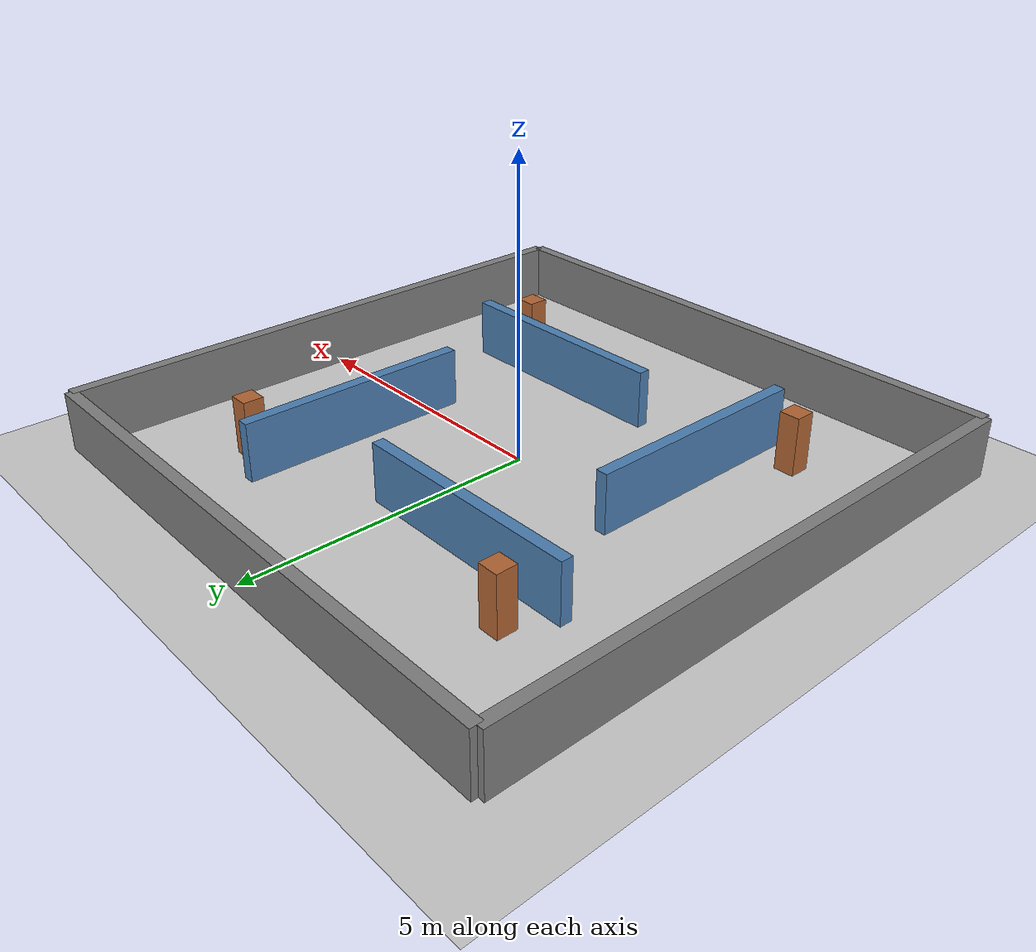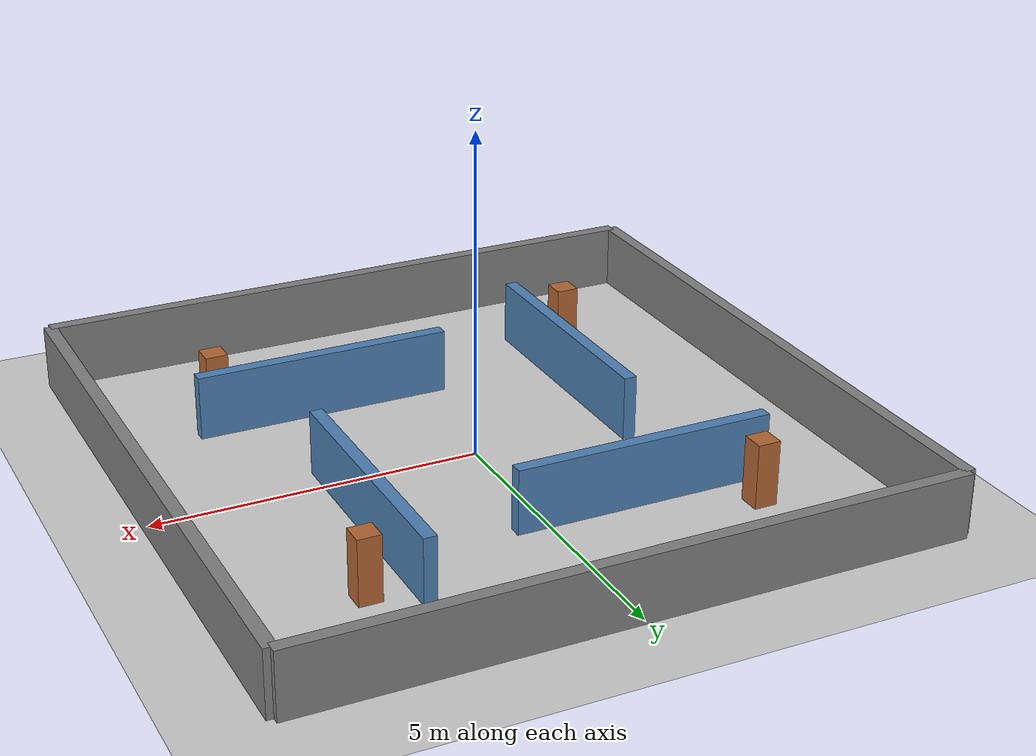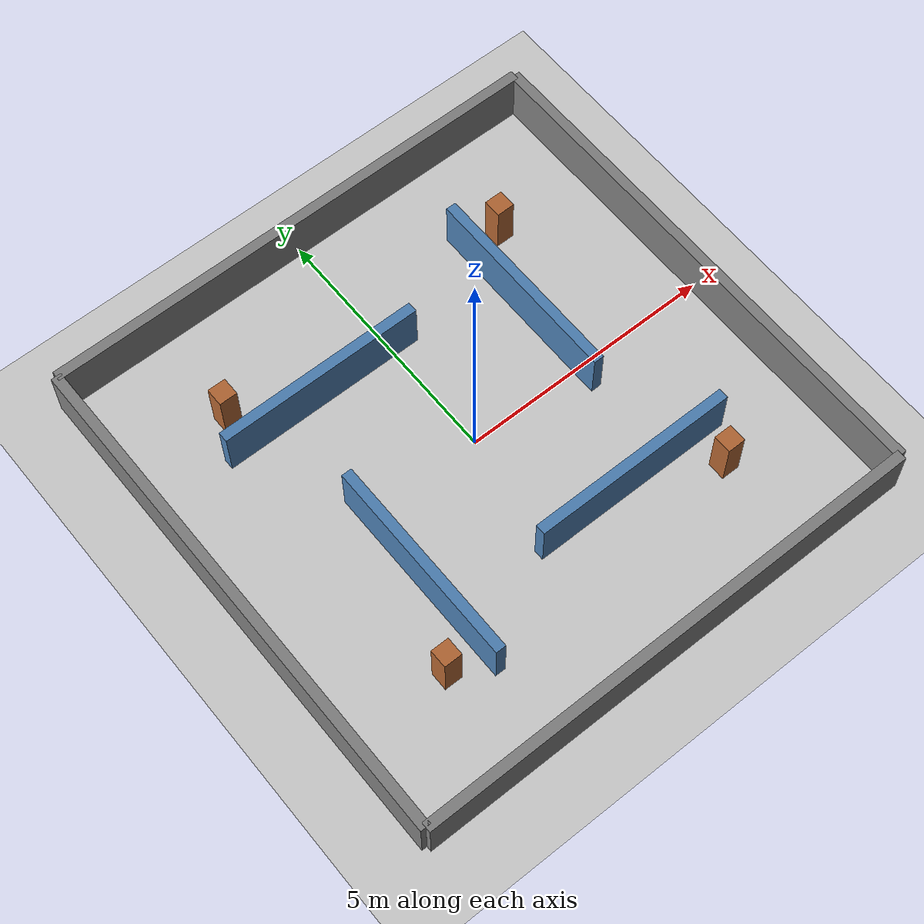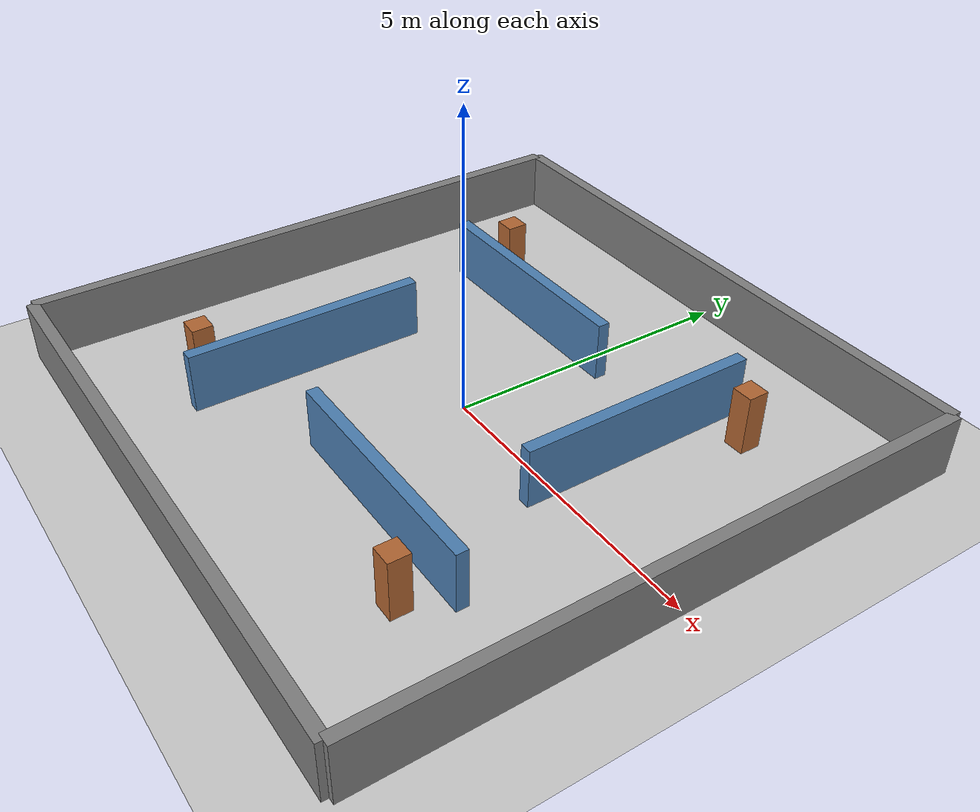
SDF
<?xml version="1.0" ?>
<sdf version="1.9">
  <world name="loop_closure_world">

    <physics name="1ms" type="ignored">
      <max_step_size>0.001</max_step_size>
      <real_time_factor>2.0</real_time_factor>
    </physics>

    <plugin filename="gz-sim-physics-system" name="gz::sim::systems::Physics"/>
    <plugin filename="gz-sim-user-commands-system" name="gz::sim::systems::UserCommands"/>
    <plugin filename="gz-sim-scene-broadcaster-system" name="gz::sim::systems::SceneBroadcaster"/>
    <plugin filename="gz-sim-contact-system" name="gz::sim::systems::Contact"/>
    <plugin filename="gz-sim-sensors-system" name="gz::sim::systems::Sensors">
      <render_engine>ogre2</render_engine>
    </plugin>
    <plugin filename="gz-sim-imu-system" name="gz::sim::systems::Imu"/>

    <light name="sun" type="directional">
      <cast_shadows>true</cast_shadows>
      <pose>0 0 10 0 0 0</pose>
      <diffuse>0.8 0.8 0.8 1</diffuse>
      <specular>0.2 0.2 0.2 1</specular>
      <direction>-0.5 0.1 -0.9</direction>
    </light>

    <!-- Ground Plane -->
    <model name="ground_plane">
      <static>true</static>
      <link name="link">
        <collision name="collision">
          <geometry><plane><normal>0 0 1</normal><size>20 20</size></plane></geometry>
          <surface>
            <friction>
              <ode>
                <mu>100000.0</mu>
                <mu2>100000.0</mu2>
                <slip1>0.0</slip1>
                <slip2>0.0</slip2>
              </ode>
            </friction>
          </surface>
        </collision>
        <visual name="visual">
          <geometry><plane><normal>0 0 1</normal><size>20 20</size></plane></geometry>
          <material><ambient>0.8 0.8 0.8 1</ambient><diffuse>0.8 0.8 0.8 1</diffuse></material>
        </visual>
      </link>
    </model>

    <!-- OUTER WALLS — 10×10 m total (inner face at ±4.9 m) -->
    <!-- North Wall -->
    <model name="wall_north">
      <static>true</static>
      <pose>0 5.0 0.5 0 0 0</pose>
      <link name="link">
        <collision name="collision"><geometry><box><size>10 0.2 1</size></box></geometry></collision>
        <visual name="visual"><geometry><box><size>10 0.2 1</size></box></geometry>
          <material><ambient>0.5 0.5 0.5 1</ambient><diffuse>0.5 0.5 0.5 1</diffuse></material>
        </visual>
      </link>
    </model>

    <!-- South Wall -->
    <model name="wall_south">
      <static>true</static>
      <pose>0 -5.0 0.5 0 0 0</pose>
      <link name="link">
        <collision name="collision"><geometry><box><size>10 0.2 1</size></box></geometry></collision>
        <visual name="visual"><geometry><box><size>10 0.2 1</size></box></geometry>
          <material><ambient>0.5 0.5 0.5 1</ambient><diffuse>0.5 0.5 0.5 1</diffuse></material>
        </visual>
      </link>
    </model>

    <!-- East Wall -->
    <model name="wall_east">
      <static>true</static>
      <pose>5.0 0 0.5 0 0 0</pose>
      <link name="link">
        <collision name="collision"><geometry><box><size>0.2 10 1</size></box></geometry></collision>
        <visual name="visual"><geometry><box><size>0.2 10 1</size></box></geometry>
          <material><ambient>0.5 0.5 0.5 1</ambient><diffuse>0.5 0.5 0.5 1</diffuse></material>
        </visual>
      </link>
    </model>

    <!-- West Wall -->
    <model name="wall_west">
      <static>true</static>
      <pose>-5.0 0 0.5 0 0 0</pose>
      <link name="link">
        <collision name="collision"><geometry><box><size>0.2 10 1</size></box></geometry></collision>
        <visual name="visual"><geometry><box><size>0.2 10 1</size></box></geometry>
          <material><ambient>0.5 0.5 0.5 1</ambient><diffuse>0.5 0.5 0.5 1</diffuse></material>
        </visual>
      </link>
    </model>

    <!-- Inner North segment -->
    <model name="inner_wall_n1">
      <static>true</static>
      <pose>-1.5 2.3 0.5 0 0 0</pose>
      <link name="link">
        <collision name="collision"><geometry><box><size>4.0 0.2 1</size></box></geometry></collision>
        <visual name="visual"><geometry><box><size>4.0 0.2 1</size></box></geometry>
          <material><ambient>0.3 0.5 0.7 1</ambient><diffuse>0.3 0.5 0.7 1</diffuse></material>
        </visual>
      </link>
    </model>

    <!-- Inner South segment -->
    <model name="inner_wall_s1">
      <static>true</static>
      <pose>1.5 -2.3 0.5 0 0 0</pose>
      <link name="link">
        <collision name="collision"><geometry><box><size>4.0 0.2 1</size></box></geometry></collision>
        <visual name="visual"><geometry><box><size>4.0 0.2 1</size></box></geometry>
          <material><ambient>0.3 0.5 0.7 1</ambient><diffuse>0.3 0.5 0.7 1</diffuse></material>
        </visual>
      </link>
    </model>

    <!-- Inner East segment -->
    <model name="inner_wall_e1">
      <static>true</static>
      <pose>2.3 1.5 0.5 0 0 1.5708</pose>
      <link name="link">
        <collision name="collision"><geometry><box><size>4.0 0.2 1</size></box></geometry></collision>
        <visual name="visual"><geometry><box><size>4.0 0.2 1</size></box></geometry>
          <material><ambient>0.3 0.5 0.7 1</ambient><diffuse>0.3 0.5 0.7 1</diffuse></material>
        </visual>
      </link>
    </model>

    <!-- Inner West segment -->
    <model name="inner_wall_w1">
      <static>true</static>
      <pose>-2.3 -1.5 0.5 0 0 1.5708</pose>
      <link name="link">
        <collision name="collision"><geometry><box><size>4.0 0.2 1</size></box></geometry></collision>
        <visual name="visual"><geometry><box><size>4.0 0.2 1</size></box></geometry>
          <material><ambient>0.3 0.5 0.7 1</ambient><diffuse>0.3 0.5 0.7 1</diffuse></material>
        </visual>
      </link>
    </model>

    <!-- Corner pillars — 0.35×0.35 m at (±3.0, ±3.0) -->
    <model name="pillar_ne">
      <static>true</static>
      <pose>3.0 3.0 0.5 0 0 0</pose>
      <link name="link">
        <collision name="collision"><geometry><box><size>0.35 0.35 1</size></box></geometry></collision>
        <visual name="visual"><geometry><box><size>0.35 0.35 1</size></box></geometry>
          <material><ambient>0.7 0.4 0.2 1</ambient><diffuse>0.7 0.4 0.2 1</diffuse></material>
        </visual>
      </link>
    </model>

    <model name="pillar_nw">
      <static>true</static>
      <pose>-3.0 3.0 0.5 0 0 0</pose>
      <link name="link">
        <collision name="collision"><geometry><box><size>0.35 0.35 1</size></box></geometry></collision>
        <visual name="visual"><geometry><box><size>0.35 0.35 1</size></box></geometry>
          <material><ambient>0.7 0.4 0.2 1</ambient><diffuse>0.7 0.4 0.2 1</diffuse></material>
        </visual>
      </link>
    </model>

    <model name="pillar_se">
      <static>true</static>
      <pose>3.0 -3.0 0.5 0 0 0</pose>
      <link name="link">
        <collision name="collision"><geometry><box><size>0.35 0.35 1</size></box></geometry></collision>
        <visual name="visual"><geometry><box><size>0.35 0.35 1</size></box></geometry>
          <material><ambient>0.7 0.4 0.2 1</ambient><diffuse>0.7 0.4 0.2 1</diffuse></material>
        </visual>
      </link>
    </model>

    <model name="pillar_sw">
      <static>true</static>
      <pose>-3.0 -3.0 0.5 0 0 0</pose>
      <link name="link">
        <collision name="collision"><geometry><box><size>0.35 0.35 1</size></box></geometry></collision>
        <visual name="visual"><geometry><box><size>0.35 0.35 1</size></box></geometry>
          <material><ambient>0.7 0.4 0.2 1</ambient><diffuse>0.7 0.4 0.2 1</diffuse></material>
        </visual>
      </link>
    </model>

  </world>
</sdf>
